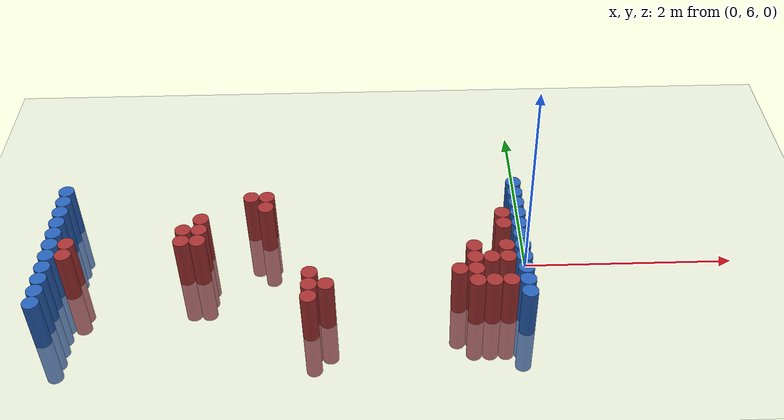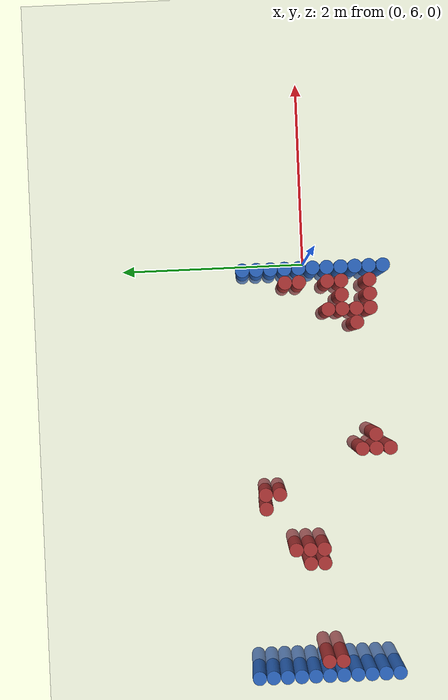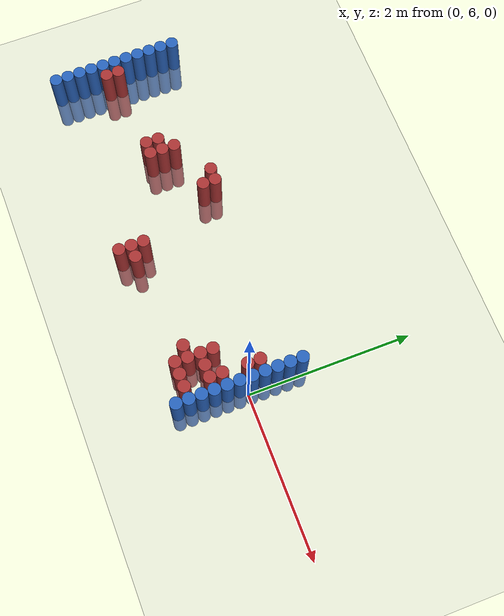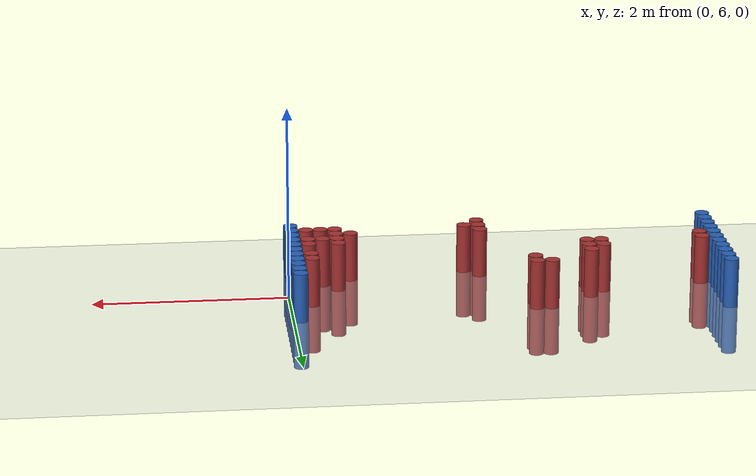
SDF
<sdf version="1.6">
 <world name="default">
  <model name="ground_plane">
   <static>1</static>
   <link name="link">
    <collision name="collision">
     <geometry><plane><normal>0 0 1</normal><size>100 100</size></plane></geometry>
     <surface><friction><ode><mu>100</mu><mu2>50</mu2></ode></friction></surface>
    </collision>
    <visual name="visual">
     <cast_shadows>0</cast_shadows>
     <geometry><plane><normal>0 0 1</normal><size>100 100</size></plane></geometry>
     <material>
      <script><uri>file://media/materials/scripts/gazebo.material</uri><name>Gazebo/Grey</name></script>
     </material>
    </visual>
   </link>
  </model>
  <model name="unit_cylinder_96">
   <static>1</static>
   <pose>-4.425000 5.175000 0.000000 0.000000 0.000000 0.000000</pose>
   <link name="link">
    <inertial>
     <mass>1</mass>
     <inertia><ixx>0.145833</ixx><ixy>0</ixy><ixz>0</ixz><iyy>0.145833</iyy><iyz>0</iyz><izz>0.125</izz></inertia>
    </inertial>
    <collision name="collision">
     <geometry><cylinder><radius>0.075000</radius><length>1</length></cylinder></geometry>
    </collision>
    <visual name="visual">
     <geometry><cylinder><radius>0.075000</radius><length>1</length></cylinder></geometry>
     <material>
      <ambient>0.152000 0.379000 0.720000 1</ambient>
      <diffuse>0.152000 0.379000 0.720000 1</diffuse>
     </material>
     <material>
      <script><name>Gazebo/Grey</name><uri>file://media/materials/scripts/gazebo.material</uri></script>
     </material>
    </visual>
   </link>
  </model>
  <model name="unit_cylinder_97">
   <static>1</static>
   <pose>-4.425000 5.325000 0.000000 0.000000 0.000000 0.000000</pose>
   <link name="link">
    <inertial>
     <mass>1</mass>
     <inertia><ixx>0.145833</ixx><ixy>0</ixy><ixz>0</ixz><iyy>0.145833</iyy><iyz>0</iyz><izz>0.125</izz></inertia>
    </inertial>
    <collision name="collision">
     <geometry><cylinder><radius>0.075000</radius><length>1</length></cylinder></geometry>
    </collision>
    <visual name="visual">
     <geometry><cylinder><radius>0.075000</radius><length>1</length></cylinder></geometry>
     <material>
      <ambient>0.152000 0.379000 0.720000 1</ambient>
      <diffuse>0.152000 0.379000 0.720000 1</diffuse>
     </material>
     <material>
      <script><name>Gazebo/Grey</name><uri>file://media/materials/scripts/gazebo.material</uri></script>
     </material>
    </visual>
   </link>
  </model>
  <model name="unit_cylinder_98">
   <static>1</static>
   <pose>-4.425000 5.475000 0.000000 0.000000 0.000000 0.000000</pose>
   <link name="link">
    <inertial>
     <mass>1</mass>
     <inertia><ixx>0.145833</ixx><ixy>0</ixy><ixz>0</ixz><iyy>0.145833</iyy><iyz>0</iyz><izz>0.125</izz></inertia>
    </inertial>
    <collision name="collision">
     <geometry><cylinder><radius>0.075000</radius><length>1</length></cylinder></geometry>
    </collision>
    <visual name="visual">
     <geometry><cylinder><radius>0.075000</radius><length>1</length></cylinder></geometry>
     <material>
      <ambient>0.152000 0.379000 0.720000 1</ambient>
      <diffuse>0.152000 0.379000 0.720000 1</diffuse>
     </material>
     <material>
      <script><name>Gazebo/Grey</name><uri>file://media/materials/scripts/gazebo.material</uri></script>
     </material>
    </visual>
   </link>
  </model>
  <model name="unit_cylinder_99">
   <static>1</static>
   <pose>-4.425000 5.625000 0.000000 0.000000 0.000000 0.000000</pose>
   <link name="link">
    <inertial>
     <mass>1</mass>
     <inertia><ixx>0.145833</ixx><ixy>0</ixy><ixz>0</ixz><iyy>0.145833</iyy><iyz>0</iyz><izz>0.125</izz></inertia>
    </inertial>
    <collision name="collision">
     <geometry><cylinder><radius>0.075000</radius><length>1</length></cylinder></geometry>
    </collision>
    <visual name="visual">
     <geometry><cylinder><radius>0.075000</radius><length>1</length></cylinder></geometry>
     <material>
      <ambient>0.152000 0.379000 0.720000 1</ambient>
      <diffuse>0.152000 0.379000 0.720000 1</diffuse>
     </material>
     <material>
      <script><name>Gazebo/Grey</name><uri>file://media/materials/scripts/gazebo.material</uri></script>
     </material>
    </visual>
   </link>
  </model>
  <model name="unit_cylinder_100">
   <static>1</static>
   <pose>-4.425000 5.775000 0.000000 0.000000 0.000000 0.000000</pose>
   <link name="link">
    <inertial>
     <mass>1</mass>
     <inertia><ixx>0.145833</ixx><ixy>0</ixy><ixz>0</ixz><iyy>0.145833</iyy><iyz>0</iyz><izz>0.125</izz></inertia>
    </inertial>
    <collision name="collision">
     <geometry><cylinder><radius>0.075000</radius><length>1</length></cylinder></geometry>
    </collision>
    <visual name="visual">
     <geometry><cylinder><radius>0.075000</radius><length>1</length></cylinder></geometry>
     <material>
      <ambient>0.152000 0.379000 0.720000 1</ambient>
      <diffuse>0.152000 0.379000 0.720000 1</diffuse>
     </material>
     <material>
      <script><name>Gazebo/Grey</name><uri>file://media/materials/scripts/gazebo.material</uri></script>
     </material>
    </visual>
   </link>
  </model>
  <model name="unit_cylinder_101">
   <static>1</static>
   <pose>-4.425000 5.925000 0.000000 0.000000 0.000000 0.000000</pose>
   <link name="link">
    <inertial>
     <mass>1</mass>
     <inertia><ixx>0.145833</ixx><ixy>0</ixy><ixz>0</ixz><iyy>0.145833</iyy><iyz>0</iyz><izz>0.125</izz></inertia>
    </inertial>
    <collision name="collision">
     <geometry><cylinder><radius>0.075000</radius><length>1</length></cylinder></geometry>
    </collision>
    <visual name="visual">
     <geometry><cylinder><radius>0.075000</radius><length>1</length></cylinder></geometry>
     <material>
      <ambient>0.152000 0.379000 0.720000 1</ambient>
      <diffuse>0.152000 0.379000 0.720000 1</diffuse>
     </material>
     <material>
      <script><name>Gazebo/Grey</name><uri>file://media/materials/scripts/gazebo.material</uri></script>
     </material>
    </visual>
   </link>
  </model>
  <model name="unit_cylinder_102">
   <static>1</static>
   <pose>-4.425000 6.075000 0.000000 0.000000 0.000000 0.000000</pose>
   <link name="link">
    <inertial>
     <mass>1</mass>
     <inertia><ixx>0.145833</ixx><ixy>0</ixy><ixz>0</ixz><iyy>0.145833</iyy><iyz>0</iyz><izz>0.125</izz></inertia>
    </inertial>
    <collision name="collision">
     <geometry><cylinder><radius>0.075000</radius><length>1</length></cylinder></geometry>
    </collision>
    <visual name="visual">
     <geometry><cylinder><radius>0.075000</radius><length>1</length></cylinder></geometry>
     <material>
      <ambient>0.152000 0.379000 0.720000 1</ambient>
      <diffuse>0.152000 0.379000 0.720000 1</diffuse>
     </material>
     <material>
      <script><name>Gazebo/Grey</name><uri>file://media/materials/scripts/gazebo.material</uri></script>
     </material>
    </visual>
   </link>
  </model>
  <model name="unit_cylinder_103">
   <static>1</static>
   <pose>-4.425000 6.225000 0.000000 0.000000 0.000000 0.000000</pose>
   <link name="link">
    <inertial>
     <mass>1</mass>
     <inertia><ixx>0.145833</ixx><ixy>0</ixy><ixz>0</ixz><iyy>0.145833</iyy><iyz>0</iyz><izz>0.125</izz></inertia>
    </inertial>
    <collision name="collision">
     <geometry><cylinder><radius>0.075000</radius><length>1</length></cylinder></geometry>
    </collision>
    <visual name="visual">
     <geometry><cylinder><radius>0.075000</radius><length>1</length></cylinder></geometry>
     <material>
      <ambient>0.152000 0.379000 0.720000 1</ambient>
      <diffuse>0.152000 0.379000 0.720000 1</diffuse>
     </material>
     <material>
      <script><name>Gazebo/Grey</name><uri>file://media/materials/scripts/gazebo.material</uri></script>
     </material>
    </visual>
   </link>
  </model>
  <model name="unit_cylinder_104">
   <static>1</static>
   <pose>-4.425000 6.375000 0.000000 0.000000 0.000000 0.000000</pose>
   <link name="link">
    <inertial>
     <mass>1</mass>
     <inertia><ixx>0.145833</ixx><ixy>0</ixy><ixz>0</ixz><iyy>0.145833</iyy><iyz>0</iyz><izz>0.125</izz></inertia>
    </inertial>
    <collision name="collision">
     <geometry><cylinder><radius>0.075000</radius><length>1</length></cylinder></geometry>
    </collision>
    <visual name="visual">
     <geometry><cylinder><radius>0.075000</radius><length>1</length></cylinder></geometry>
     <material>
      <ambient>0.152000 0.379000 0.720000 1</ambient>
      <diffuse>0.152000 0.379000 0.720000 1</diffuse>
     </material>
     <material>
      <script><name>Gazebo/Grey</name><uri>file://media/materials/scripts/gazebo.material</uri></script>
     </material>
    </visual>
   </link>
  </model>
  <model name="unit_cylinder_105">
   <static>1</static>
   <pose>-4.425000 6.525000 0.000000 0.000000 0.000000 0.000000</pose>
   <link name="link">
    <inertial>
     <mass>1</mass>
     <inertia><ixx>0.145833</ixx><ixy>0</ixy><ixz>0</ixz><iyy>0.145833</iyy><iyz>0</iyz><izz>0.125</izz></inertia>
    </inertial>
    <collision name="collision">
     <geometry><cylinder><radius>0.075000</radius><length>1</length></cylinder></geometry>
    </collision>
    <visual name="visual">
     <geometry><cylinder><radius>0.075000</radius><length>1</length></cylinder></geometry>
     <material>
      <ambient>0.152000 0.379000 0.720000 1</ambient>
      <diffuse>0.152000 0.379000 0.720000 1</diffuse>
     </material>
     <material>
      <script><name>Gazebo/Grey</name><uri>file://media/materials/scripts/gazebo.material</uri></script>
     </material>
    </visual>
   </link>
  </model>
  <model name="unit_cylinder_106">
   <static>1</static>
   <pose>-4.425000 6.675000 0.000000 0.000000 0.000000 0.000000</pose>
   <link name="link">
    <inertial>
     <mass>1</mass>
     <inertia><ixx>0.145833</ixx><ixy>0</ixy><ixz>0</ixz><iyy>0.145833</iyy><iyz>0</iyz><izz>0.125</izz></inertia>
    </inertial>
    <collision name="collision">
     <geometry><cylinder><radius>0.075000</radius><length>1</length></cylinder></geometry>
    </collision>
    <visual name="visual">
     <geometry><cylinder><radius>0.075000</radius><length>1</length></cylinder></geometry>
     <material>
      <ambient>0.152000 0.379000 0.720000 1</ambient>
      <diffuse>0.152000 0.379000 0.720000 1</diffuse>
     </material>
     <material>
      <script><name>Gazebo/Grey</name><uri>file://media/materials/scripts/gazebo.material</uri></script>
     </material>
    </visual>
   </link>
  </model>
  <model name="unit_cylinder_126">
   <static>1</static>
   <pose>-4.275000 5.775000 0.000000 0.000000 0.000000 0.000000</pose>
   <link name="link">
    <inertial>
     <mass>1</mass>
     <inertia><ixx>0.145833</ixx><ixy>0</ixy><ixz>0</ixz><iyy>0.145833</iyy><iyz>0</iyz><izz>0.125</izz></inertia>
    </inertial>
    <collision name="collision">
     <geometry><cylinder><radius>0.075000</radius><length>1</length></cylinder></geometry>
    </collision>
    <visual name="visual">
     <geometry><cylinder><radius>0.075000</radius><length>1</length></cylinder></geometry>
     <material>
      <ambient>0.648000 0.192000 0.192000 1</ambient>
      <diffuse>0.648000 0.192000 0.192000 1</diffuse>
     </material>
     <material>
      <script><name>Gazebo/Grey</name><uri>file://media/materials/scripts/gazebo.material</uri></script>
     </material>
    </visual>
   </link>
  </model>
  <model name="unit_cylinder_127">
   <static>1</static>
   <pose>-4.275000 5.925000 0.000000 0.000000 0.000000 0.000000</pose>
   <link name="link">
    <inertial>
     <mass>1</mass>
     <inertia><ixx>0.145833</ixx><ixy>0</ixy><ixz>0</ixz><iyy>0.145833</iyy><iyz>0</iyz><izz>0.125</izz></inertia>
    </inertial>
    <collision name="collision">
     <geometry><cylinder><radius>0.075000</radius><length>1</length></cylinder></geometry>
    </collision>
    <visual name="visual">
     <geometry><cylinder><radius>0.075000</radius><length>1</length></cylinder></geometry>
     <material>
      <ambient>0.648000 0.192000 0.192000 1</ambient>
      <diffuse>0.648000 0.192000 0.192000 1</diffuse>
     </material>
     <material>
      <script><name>Gazebo/Grey</name><uri>file://media/materials/scripts/gazebo.material</uri></script>
     </material>
    </visual>
   </link>
  </model>
  <model name="unit_cylinder_147">
   <static>1</static>
   <pose>-3.225000 5.925000 0.000000 0.000000 0.000000 0.000000</pose>
   <link name="link">
    <inertial>
     <mass>1</mass>
     <inertia><ixx>0.145833</ixx><ixy>0</ixy><ixz>0</ixz><iyy>0.145833</iyy><iyz>0</iyz><izz>0.125</izz></inertia>
    </inertial>
    <collision name="collision">
     <geometry><cylinder><radius>0.075000</radius><length>1</length></cylinder></geometry>
    </collision>
    <visual name="visual">
     <geometry><cylinder><radius>0.075000</radius><length>1</length></cylinder></geometry>
     <material>
      <ambient>0.648000 0.192000 0.192000 1</ambient>
      <diffuse>0.648000 0.192000 0.192000 1</diffuse>
     </material>
     <material>
      <script><name>Gazebo/Grey</name><uri>file://media/materials/scripts/gazebo.material</uri></script>
     </material>
    </visual>
   </link>
  </model>
  <model name="unit_cylinder_148">
   <static>1</static>
   <pose>-3.225000 6.075000 0.000000 0.000000 0.000000 0.000000</pose>
   <link name="link">
    <inertial>
     <mass>1</mass>
     <inertia><ixx>0.145833</ixx><ixy>0</ixy><ixz>0</ixz><iyy>0.145833</iyy><iyz>0</iyz><izz>0.125</izz></inertia>
    </inertial>
    <collision name="collision">
     <geometry><cylinder><radius>0.075000</radius><length>1</length></cylinder></geometry>
    </collision>
    <visual name="visual">
     <geometry><cylinder><radius>0.075000</radius><length>1</length></cylinder></geometry>
     <material>
      <ambient>0.648000 0.192000 0.192000 1</ambient>
      <diffuse>0.648000 0.192000 0.192000 1</diffuse>
     </material>
     <material>
      <script><name>Gazebo/Grey</name><uri>file://media/materials/scripts/gazebo.material</uri></script>
     </material>
    </visual>
   </link>
  </model>
  <model name="unit_cylinder_150">
   <static>1</static>
   <pose>-3.075000 5.925000 0.000000 0.000000 0.000000 0.000000</pose>
   <link name="link">
    <inertial>
     <mass>1</mass>
     <inertia><ixx>0.145833</ixx><ixy>0</ixy><ixz>0</ixz><iyy>0.145833</iyy><iyz>0</iyz><izz>0.125</izz></inertia>
    </inertial>
    <collision name="collision">
     <geometry><cylinder><radius>0.075000</radius><length>1</length></cylinder></geometry>
    </collision>
    <visual name="visual">
     <geometry><cylinder><radius>0.075000</radius><length>1</length></cylinder></geometry>
     <material>
      <ambient>0.648000 0.192000 0.192000 1</ambient>
      <diffuse>0.648000 0.192000 0.192000 1</diffuse>
     </material>
     <material>
      <script><name>Gazebo/Grey</name><uri>file://media/materials/scripts/gazebo.material</uri></script>
     </material>
    </visual>
   </link>
  </model>
  <model name="unit_cylinder_151">
   <static>1</static>
   <pose>-3.075000 6.075000 0.000000 0.000000 0.000000 0.000000</pose>
   <link name="link">
    <inertial>
     <mass>1</mass>
     <inertia><ixx>0.145833</ixx><ixy>0</ixy><ixz>0</ixz><iyy>0.145833</iyy><iyz>0</iyz><izz>0.125</izz></inertia>
    </inertial>
    <collision name="collision">
     <geometry><cylinder><radius>0.075000</radius><length>1</length></cylinder></geometry>
    </collision>
    <visual name="visual">
     <geometry><cylinder><radius>0.075000</radius><length>1</length></cylinder></geometry>
     <material>
      <ambient>0.648000 0.192000 0.192000 1</ambient>
      <diffuse>0.648000 0.192000 0.192000 1</diffuse>
     </material>
     <material>
      <script><name>Gazebo/Grey</name><uri>file://media/materials/scripts/gazebo.material</uri></script>
     </material>
    </visual>
   </link>
  </model>
  <model name="unit_cylinder_152">
   <static>1</static>
   <pose>-3.075000 6.225000 0.000000 0.000000 0.000000 0.000000</pose>
   <link name="link">
    <inertial>
     <mass>1</mass>
     <inertia><ixx>0.145833</ixx><ixy>0</ixy><ixz>0</ixz><iyy>0.145833</iyy><iyz>0</iyz><izz>0.125</izz></inertia>
    </inertial>
    <collision name="collision">
     <geometry><cylinder><radius>0.075000</radius><length>1</length></cylinder></geometry>
    </collision>
    <visual name="visual">
     <geometry><cylinder><radius>0.075000</radius><length>1</length></cylinder></geometry>
     <material>
      <ambient>0.648000 0.192000 0.192000 1</ambient>
      <diffuse>0.648000 0.192000 0.192000 1</diffuse>
     </material>
     <material>
      <script><name>Gazebo/Grey</name><uri>file://media/materials/scripts/gazebo.material</uri></script>
     </material>
    </visual>
   </link>
  </model>
  <model name="unit_cylinder_156">
   <static>1</static>
   <pose>-2.625000 6.525000 0.000000 0.000000 0.000000 0.000000</pose>
   <link name="link">
    <inertial>
     <mass>1</mass>
     <inertia><ixx>0.145833</ixx><ixy>0</ixy><ixz>0</ixz><iyy>0.145833</iyy><iyz>0</iyz><izz>0.125</izz></inertia>
    </inertial>
    <collision name="collision">
     <geometry><cylinder><radius>0.075000</radius><length>1</length></cylinder></geometry>
    </collision>
    <visual name="visual">
     <geometry><cylinder><radius>0.075000</radius><length>1</length></cylinder></geometry>
     <material>
      <ambient>0.648000 0.192000 0.192000 1</ambient>
      <diffuse>0.648000 0.192000 0.192000 1</diffuse>
     </material>
     <material>
      <script><name>Gazebo/Grey</name><uri>file://media/materials/scripts/gazebo.material</uri></script>
     </material>
    </visual>
   </link>
  </model>
  <model name="unit_cylinder_159">
   <static>1</static>
   <pose>-2.475000 6.375000 0.000000 0.000000 0.000000 0.000000</pose>
   <link name="link">
    <inertial>
     <mass>1</mass>
     <inertia><ixx>0.145833</ixx><ixy>0</ixy><ixz>0</ixz><iyy>0.145833</iyy><iyz>0</iyz><izz>0.125</izz></inertia>
    </inertial>
    <collision name="collision">
     <geometry><cylinder><radius>0.075000</radius><length>1</length></cylinder></geometry>
    </collision>
    <visual name="visual">
     <geometry><cylinder><radius>0.075000</radius><length>1</length></cylinder></geometry>
     <material>
      <ambient>0.648000 0.192000 0.192000 1</ambient>
      <diffuse>0.648000 0.192000 0.192000 1</diffuse>
     </material>
     <material>
      <script><name>Gazebo/Grey</name><uri>file://media/materials/scripts/gazebo.material</uri></script>
     </material>
    </visual>
   </link>
  </model>
  <model name="unit_cylinder_160">
   <static>1</static>
   <pose>-2.475000 6.525000 0.000000 0.000000 0.000000 0.000000</pose>
   <link name="link">
    <inertial>
     <mass>1</mass>
     <inertia><ixx>0.145833</ixx><ixy>0</ixy><ixz>0</ixz><iyy>0.145833</iyy><iyz>0</iyz><izz>0.125</izz></inertia>
    </inertial>
    <collision name="collision">
     <geometry><cylinder><radius>0.075000</radius><length>1</length></cylinder></geometry>
    </collision>
    <visual name="visual">
     <geometry><cylinder><radius>0.075000</radius><length>1</length></cylinder></geometry>
     <material>
      <ambient>0.648000 0.192000 0.192000 1</ambient>
      <diffuse>0.648000 0.192000 0.192000 1</diffuse>
     </material>
     <material>
      <script><name>Gazebo/Grey</name><uri>file://media/materials/scripts/gazebo.material</uri></script>
     </material>
    </visual>
   </link>
  </model>
  <model name="unit_cylinder_169">
   <static>1</static>
   <pose>-2.025000 5.175000 0.000000 0.000000 0.000000 0.000000</pose>
   <link name="link">
    <inertial>
     <mass>1</mass>
     <inertia><ixx>0.145833</ixx><ixy>0</ixy><ixz>0</ixz><iyy>0.145833</iyy><iyz>0</iyz><izz>0.125</izz></inertia>
    </inertial>
    <collision name="collision">
     <geometry><cylinder><radius>0.075000</radius><length>1</length></cylinder></geometry>
    </collision>
    <visual name="visual">
     <geometry><cylinder><radius>0.075000</radius><length>1</length></cylinder></geometry>
     <material>
      <ambient>0.648000 0.192000 0.192000 1</ambient>
      <diffuse>0.648000 0.192000 0.192000 1</diffuse>
     </material>
     <material>
      <script><name>Gazebo/Grey</name><uri>file://media/materials/scripts/gazebo.material</uri></script>
     </material>
    </visual>
   </link>
  </model>
  <model name="unit_cylinder_170">
   <static>1</static>
   <pose>-2.025000 5.325000 0.000000 0.000000 0.000000 0.000000</pose>
   <link name="link">
    <inertial>
     <mass>1</mass>
     <inertia><ixx>0.145833</ixx><ixy>0</ixy><ixz>0</ixz><iyy>0.145833</iyy><iyz>0</iyz><izz>0.125</izz></inertia>
    </inertial>
    <collision name="collision">
     <geometry><cylinder><radius>0.075000</radius><length>1</length></cylinder></geometry>
    </collision>
    <visual name="visual">
     <geometry><cylinder><radius>0.075000</radius><length>1</length></cylinder></geometry>
     <material>
      <ambient>0.648000 0.192000 0.192000 1</ambient>
      <diffuse>0.648000 0.192000 0.192000 1</diffuse>
     </material>
     <material>
      <script><name>Gazebo/Grey</name><uri>file://media/materials/scripts/gazebo.material</uri></script>
     </material>
    </visual>
   </link>
  </model>
  <model name="unit_cylinder_171">
   <static>1</static>
   <pose>-2.025000 5.475000 0.000000 0.000000 0.000000 0.000000</pose>
   <link name="link">
    <inertial>
     <mass>1</mass>
     <inertia><ixx>0.145833</ixx><ixy>0</ixy><ixz>0</ixz><iyy>0.145833</iyy><iyz>0</iyz><izz>0.125</izz></inertia>
    </inertial>
    <collision name="collision">
     <geometry><cylinder><radius>0.075000</radius><length>1</length></cylinder></geometry>
    </collision>
    <visual name="visual">
     <geometry><cylinder><radius>0.075000</radius><length>1</length></cylinder></geometry>
     <material>
      <ambient>0.648000 0.192000 0.192000 1</ambient>
      <diffuse>0.648000 0.192000 0.192000 1</diffuse>
     </material>
     <material>
      <script><name>Gazebo/Grey</name><uri>file://media/materials/scripts/gazebo.material</uri></script>
     </material>
    </visual>
   </link>
  </model>
  <model name="unit_cylinder_172">
   <static>1</static>
   <pose>-1.875000 5.325000 0.000000 0.000000 0.000000 0.000000</pose>
   <link name="link">
    <inertial>
     <mass>1</mass>
     <inertia><ixx>0.145833</ixx><ixy>0</ixy><ixz>0</ixz><iyy>0.145833</iyy><iyz>0</iyz><izz>0.125</izz></inertia>
    </inertial>
    <collision name="collision">
     <geometry><cylinder><radius>0.075000</radius><length>1</length></cylinder></geometry>
    </collision>
    <visual name="visual">
     <geometry><cylinder><radius>0.075000</radius><length>1</length></cylinder></geometry>
     <material>
      <ambient>0.648000 0.192000 0.192000 1</ambient>
      <diffuse>0.648000 0.192000 0.192000 1</diffuse>
     </material>
     <material>
      <script><name>Gazebo/Grey</name><uri>file://media/materials/scripts/gazebo.material</uri></script>
     </material>
    </visual>
   </link>
  </model>
  <model name="unit_cylinder_187">
   <static>1</static>
   <pose>-0.675000 5.475000 0.000000 0.000000 0.000000 0.000000</pose>
   <link name="link">
    <inertial>
     <mass>1</mass>
     <inertia><ixx>0.145833</ixx><ixy>0</ixy><ixz>0</ixz><iyy>0.145833</iyy><iyz>0</iyz><izz>0.125</izz></inertia>
    </inertial>
    <collision name="collision">
     <geometry><cylinder><radius>0.075000</radius><length>1</length></cylinder></geometry>
    </collision>
    <visual name="visual">
     <geometry><cylinder><radius>0.075000</radius><length>1</length></cylinder></geometry>
     <material>
      <ambient>0.648000 0.192000 0.192000 1</ambient>
      <diffuse>0.648000 0.192000 0.192000 1</diffuse>
     </material>
     <material>
      <script><name>Gazebo/Grey</name><uri>file://media/materials/scripts/gazebo.material</uri></script>
     </material>
    </visual>
   </link>
  </model>
  <model name="unit_cylinder_190">
   <static>1</static>
   <pose>-0.525000 5.325000 0.000000 0.000000 0.000000 0.000000</pose>
   <link name="link">
    <inertial>
     <mass>1</mass>
     <inertia><ixx>0.145833</ixx><ixy>0</ixy><ixz>0</ixz><iyy>0.145833</iyy><iyz>0</iyz><izz>0.125</izz></inertia>
    </inertial>
    <collision name="collision">
     <geometry><cylinder><radius>0.075000</radius><length>1</length></cylinder></geometry>
    </collision>
    <visual name="visual">
     <geometry><cylinder><radius>0.075000</radius><length>1</length></cylinder></geometry>
     <material>
      <ambient>0.648000 0.192000 0.192000 1</ambient>
      <diffuse>0.648000 0.192000 0.192000 1</diffuse>
     </material>
     <material>
      <script><name>Gazebo/Grey</name><uri>file://media/materials/scripts/gazebo.material</uri></script>
     </material>
    </visual>
   </link>
  </model>
  <model name="unit_cylinder_191">
   <static>1</static>
   <pose>-0.525000 5.475000 0.000000 0.000000 0.000000 0.000000</pose>
   <link name="link">
    <inertial>
     <mass>1</mass>
     <inertia><ixx>0.145833</ixx><ixy>0</ixy><ixz>0</ixz><iyy>0.145833</iyy><iyz>0</iyz><izz>0.125</izz></inertia>
    </inertial>
    <collision name="collision">
     <geometry><cylinder><radius>0.075000</radius><length>1</length></cylinder></geometry>
    </collision>
    <visual name="visual">
     <geometry><cylinder><radius>0.075000</radius><length>1</length></cylinder></geometry>
     <material>
      <ambient>0.648000 0.192000 0.192000 1</ambient>
      <diffuse>0.648000 0.192000 0.192000 1</diffuse>
     </material>
     <material>
      <script><name>Gazebo/Grey</name><uri>file://media/materials/scripts/gazebo.material</uri></script>
     </material>
    </visual>
   </link>
  </model>
  <model name="unit_cylinder_192">
   <static>1</static>
   <pose>-0.525000 5.625000 0.000000 0.000000 0.000000 0.000000</pose>
   <link name="link">
    <inertial>
     <mass>1</mass>
     <inertia><ixx>0.145833</ixx><ixy>0</ixy><ixz>0</ixz><iyy>0.145833</iyy><iyz>0</iyz><izz>0.125</izz></inertia>
    </inertial>
    <collision name="collision">
     <geometry><cylinder><radius>0.075000</radius><length>1</length></cylinder></geometry>
    </collision>
    <visual name="visual">
     <geometry><cylinder><radius>0.075000</radius><length>1</length></cylinder></geometry>
     <material>
      <ambient>0.648000 0.192000 0.192000 1</ambient>
      <diffuse>0.648000 0.192000 0.192000 1</diffuse>
     </material>
     <material>
      <script><name>Gazebo/Grey</name><uri>file://media/materials/scripts/gazebo.material</uri></script>
     </material>
    </visual>
   </link>
  </model>
  <model name="unit_cylinder_193">
   <static>1</static>
   <pose>-0.525000 5.775000 0.000000 0.000000 0.000000 0.000000</pose>
   <link name="link">
    <inertial>
     <mass>1</mass>
     <inertia><ixx>0.145833</ixx><ixy>0</ixy><ixz>0</ixz><iyy>0.145833</iyy><iyz>0</iyz><izz>0.125</izz></inertia>
    </inertial>
    <collision name="collision">
     <geometry><cylinder><radius>0.075000</radius><length>1</length></cylinder></geometry>
    </collision>
    <visual name="visual">
     <geometry><cylinder><radius>0.075000</radius><length>1</length></cylinder></geometry>
     <material>
      <ambient>0.648000 0.192000 0.192000 1</ambient>
      <diffuse>0.648000 0.192000 0.192000 1</diffuse>
     </material>
     <material>
      <script><name>Gazebo/Grey</name><uri>file://media/materials/scripts/gazebo.material</uri></script>
     </material>
    </visual>
   </link>
  </model>
  <model name="unit_cylinder_196">
   <static>1</static>
   <pose>-0.375000 5.325000 0.000000 0.000000 0.000000 0.000000</pose>
   <link name="link">
    <inertial>
     <mass>1</mass>
     <inertia><ixx>0.145833</ixx><ixy>0</ixy><ixz>0</ixz><iyy>0.145833</iyy><iyz>0</iyz><izz>0.125</izz></inertia>
    </inertial>
    <collision name="collision">
     <geometry><cylinder><radius>0.075000</radius><length>1</length></cylinder></geometry>
    </collision>
    <visual name="visual">
     <geometry><cylinder><radius>0.075000</radius><length>1</length></cylinder></geometry>
     <material>
      <ambient>0.648000 0.192000 0.192000 1</ambient>
      <diffuse>0.648000 0.192000 0.192000 1</diffuse>
     </material>
     <material>
      <script><name>Gazebo/Grey</name><uri>file://media/materials/scripts/gazebo.material</uri></script>
     </material>
    </visual>
   </link>
  </model>
  <model name="unit_cylinder_197">
   <static>1</static>
   <pose>-0.375000 5.625000 0.000000 0.000000 0.000000 0.000000</pose>
   <link name="link">
    <inertial>
     <mass>1</mass>
     <inertia><ixx>0.145833</ixx><ixy>0</ixy><ixz>0</ixz><iyy>0.145833</iyy><iyz>0</iyz><izz>0.125</izz></inertia>
    </inertial>
    <collision name="collision">
     <geometry><cylinder><radius>0.075000</radius><length>1</length></cylinder></geometry>
    </collision>
    <visual name="visual">
     <geometry><cylinder><radius>0.075000</radius><length>1</length></cylinder></geometry>
     <material>
      <ambient>0.648000 0.192000 0.192000 1</ambient>
      <diffuse>0.648000 0.192000 0.192000 1</diffuse>
     </material>
     <material>
      <script><name>Gazebo/Grey</name><uri>file://media/materials/scripts/gazebo.material</uri></script>
     </material>
    </visual>
   </link>
  </model>
  <model name="unit_cylinder_200">
   <static>1</static>
   <pose>-0.225000 5.325000 0.000000 0.000000 0.000000 0.000000</pose>
   <link name="link">
    <inertial>
     <mass>1</mass>
     <inertia><ixx>0.145833</ixx><ixy>0</ixy><ixz>0</ixz><iyy>0.145833</iyy><iyz>0</iyz><izz>0.125</izz></inertia>
    </inertial>
    <collision name="collision">
     <geometry><cylinder><radius>0.075000</radius><length>1</length></cylinder></geometry>
    </collision>
    <visual name="visual">
     <geometry><cylinder><radius>0.075000</radius><length>1</length></cylinder></geometry>
     <material>
      <ambient>0.648000 0.192000 0.192000 1</ambient>
      <diffuse>0.648000 0.192000 0.192000 1</diffuse>
     </material>
     <material>
      <script><name>Gazebo/Grey</name><uri>file://media/materials/scripts/gazebo.material</uri></script>
     </material>
    </visual>
   </link>
  </model>
  <model name="unit_cylinder_201">
   <static>1</static>
   <pose>-0.225000 5.625000 0.000000 0.000000 0.000000 0.000000</pose>
   <link name="link">
    <inertial>
     <mass>1</mass>
     <inertia><ixx>0.145833</ixx><ixy>0</ixy><ixz>0</ixz><iyy>0.145833</iyy><iyz>0</iyz><izz>0.125</izz></inertia>
    </inertial>
    <collision name="collision">
     <geometry><cylinder><radius>0.075000</radius><length>1</length></cylinder></geometry>
    </collision>
    <visual name="visual">
     <geometry><cylinder><radius>0.075000</radius><length>1</length></cylinder></geometry>
     <material>
      <ambient>0.648000 0.192000 0.192000 1</ambient>
      <diffuse>0.648000 0.192000 0.192000 1</diffuse>
     </material>
     <material>
      <script><name>Gazebo/Grey</name><uri>file://media/materials/scripts/gazebo.material</uri></script>
     </material>
    </visual>
   </link>
  </model>
  <model name="unit_cylinder_202">
   <static>1</static>
   <pose>-0.225000 5.775000 0.000000 0.000000 0.000000 0.000000</pose>
   <link name="link">
    <inertial>
     <mass>1</mass>
     <inertia><ixx>0.145833</ixx><ixy>0</ixy><ixz>0</ixz><iyy>0.145833</iyy><iyz>0</iyz><izz>0.125</izz></inertia>
    </inertial>
    <collision name="collision">
     <geometry><cylinder><radius>0.075000</radius><length>1</length></cylinder></geometry>
    </collision>
    <visual name="visual">
     <geometry><cylinder><radius>0.075000</radius><length>1</length></cylinder></geometry>
     <material>
      <ambient>0.648000 0.192000 0.192000 1</ambient>
      <diffuse>0.648000 0.192000 0.192000 1</diffuse>
     </material>
     <material>
      <script><name>Gazebo/Grey</name><uri>file://media/materials/scripts/gazebo.material</uri></script>
     </material>
    </visual>
   </link>
  </model>
  <model name="unit_cylinder_203">
   <static>1</static>
   <pose>-0.225000 6.075000 0.000000 0.000000 0.000000 0.000000</pose>
   <link name="link">
    <inertial>
     <mass>1</mass>
     <inertia><ixx>0.145833</ixx><ixy>0</ixy><ixz>0</ixz><iyy>0.145833</iyy><iyz>0</iyz><izz>0.125</izz></inertia>
    </inertial>
    <collision name="collision">
     <geometry><cylinder><radius>0.075000</radius><length>1</length></cylinder></geometry>
    </collision>
    <visual name="visual">
     <geometry><cylinder><radius>0.075000</radius><length>1</length></cylinder></geometry>
     <material>
      <ambient>0.648000 0.192000 0.192000 1</ambient>
      <diffuse>0.648000 0.192000 0.192000 1</diffuse>
     </material>
     <material>
      <script><name>Gazebo/Grey</name><uri>file://media/materials/scripts/gazebo.material</uri></script>
     </material>
    </visual>
   </link>
  </model>
  <model name="unit_cylinder_204">
   <static>1</static>
   <pose>-0.225000 6.225000 0.000000 0.000000 0.000000 0.000000</pose>
   <link name="link">
    <inertial>
     <mass>1</mass>
     <inertia><ixx>0.145833</ixx><ixy>0</ixy><ixz>0</ixz><iyy>0.145833</iyy><iyz>0</iyz><izz>0.125</izz></inertia>
    </inertial>
    <collision name="collision">
     <geometry><cylinder><radius>0.075000</radius><length>1</length></cylinder></geometry>
    </collision>
    <visual name="visual">
     <geometry><cylinder><radius>0.075000</radius><length>1</length></cylinder></geometry>
     <material>
      <ambient>0.648000 0.192000 0.192000 1</ambient>
      <diffuse>0.648000 0.192000 0.192000 1</diffuse>
     </material>
     <material>
      <script><name>Gazebo/Grey</name><uri>file://media/materials/scripts/gazebo.material</uri></script>
     </material>
    </visual>
   </link>
  </model>
  <model name="unit_cylinder_210">
   <static>1</static>
   <pose>-0.075000 5.175000 0.000000 0.000000 0.000000 0.000000</pose>
   <link name="link">
    <inertial>
     <mass>1</mass>
     <inertia><ixx>0.145833</ixx><ixy>0</ixy><ixz>0</ixz><iyy>0.145833</iyy><iyz>0</iyz><izz>0.125</izz></inertia>
    </inertial>
    <collision name="collision">
     <geometry><cylinder><radius>0.075000</radius><length>1</length></cylinder></geometry>
    </collision>
    <visual name="visual">
     <geometry><cylinder><radius>0.075000</radius><length>1</length></cylinder></geometry>
     <material>
      <ambient>0.152000 0.379000 0.720000 1</ambient>
      <diffuse>0.152000 0.379000 0.720000 1</diffuse>
     </material>
     <material>
      <script><name>Gazebo/Grey</name><uri>file://media/materials/scripts/gazebo.material</uri></script>
     </material>
    </visual>
   </link>
  </model>
  <model name="unit_cylinder_211">
   <static>1</static>
   <pose>-0.075000 5.325000 0.000000 0.000000 0.000000 0.000000</pose>
   <link name="link">
    <inertial>
     <mass>1</mass>
     <inertia><ixx>0.145833</ixx><ixy>0</ixy><ixz>0</ixz><iyy>0.145833</iyy><iyz>0</iyz><izz>0.125</izz></inertia>
    </inertial>
    <collision name="collision">
     <geometry><cylinder><radius>0.075000</radius><length>1</length></cylinder></geometry>
    </collision>
    <visual name="visual">
     <geometry><cylinder><radius>0.075000</radius><length>1</length></cylinder></geometry>
     <material>
      <ambient>0.152000 0.379000 0.720000 1</ambient>
      <diffuse>0.152000 0.379000 0.720000 1</diffuse>
     </material>
     <material>
      <script><name>Gazebo/Grey</name><uri>file://media/materials/scripts/gazebo.material</uri></script>
     </material>
    </visual>
   </link>
  </model>
  <model name="unit_cylinder_212">
   <static>1</static>
   <pose>-0.075000 5.475000 0.000000 0.000000 0.000000 0.000000</pose>
   <link name="link">
    <inertial>
     <mass>1</mass>
     <inertia><ixx>0.145833</ixx><ixy>0</ixy><ixz>0</ixz><iyy>0.145833</iyy><iyz>0</iyz><izz>0.125</izz></inertia>
    </inertial>
    <collision name="collision">
     <geometry><cylinder><radius>0.075000</radius><length>1</length></cylinder></geometry>
    </collision>
    <visual name="visual">
     <geometry><cylinder><radius>0.075000</radius><length>1</length></cylinder></geometry>
     <material>
      <ambient>0.152000 0.379000 0.720000 1</ambient>
      <diffuse>0.152000 0.379000 0.720000 1</diffuse>
     </material>
     <material>
      <script><name>Gazebo/Grey</name><uri>file://media/materials/scripts/gazebo.material</uri></script>
     </material>
    </visual>
   </link>
  </model>
  <model name="unit_cylinder_213">
   <static>1</static>
   <pose>-0.075000 5.625000 0.000000 0.000000 0.000000 0.000000</pose>
   <link name="link">
    <inertial>
     <mass>1</mass>
     <inertia><ixx>0.145833</ixx><ixy>0</ixy><ixz>0</ixz><iyy>0.145833</iyy><iyz>0</iyz><izz>0.125</izz></inertia>
    </inertial>
    <collision name="collision">
     <geometry><cylinder><radius>0.075000</radius><length>1</length></cylinder></geometry>
    </collision>
    <visual name="visual">
     <geometry><cylinder><radius>0.075000</radius><length>1</length></cylinder></geometry>
     <material>
      <ambient>0.152000 0.379000 0.720000 1</ambient>
      <diffuse>0.152000 0.379000 0.720000 1</diffuse>
     </material>
     <material>
      <script><name>Gazebo/Grey</name><uri>file://media/materials/scripts/gazebo.material</uri></script>
     </material>
    </visual>
   </link>
  </model>
  <model name="unit_cylinder_214">
   <static>1</static>
   <pose>-0.075000 5.775000 0.000000 0.000000 0.000000 0.000000</pose>
   <link name="link">
    <inertial>
     <mass>1</mass>
     <inertia><ixx>0.145833</ixx><ixy>0</ixy><ixz>0</ixz><iyy>0.145833</iyy><iyz>0</iyz><izz>0.125</izz></inertia>
    </inertial>
    <collision name="collision">
     <geometry><cylinder><radius>0.075000</radius><length>1</length></cylinder></geometry>
    </collision>
    <visual name="visual">
     <geometry><cylinder><radius>0.075000</radius><length>1</length></cylinder></geometry>
     <material>
      <ambient>0.152000 0.379000 0.720000 1</ambient>
      <diffuse>0.152000 0.379000 0.720000 1</diffuse>
     </material>
     <material>
      <script><name>Gazebo/Grey</name><uri>file://media/materials/scripts/gazebo.material</uri></script>
     </material>
    </visual>
   </link>
  </model>
  <model name="unit_cylinder_215">
   <static>1</static>
   <pose>-0.075000 5.925000 0.000000 0.000000 0.000000 0.000000</pose>
   <link name="link">
    <inertial>
     <mass>1</mass>
     <inertia><ixx>0.145833</ixx><ixy>0</ixy><ixz>0</ixz><iyy>0.145833</iyy><iyz>0</iyz><izz>0.125</izz></inertia>
    </inertial>
    <collision name="collision">
     <geometry><cylinder><radius>0.075000</radius><length>1</length></cylinder></geometry>
    </collision>
    <visual name="visual">
     <geometry><cylinder><radius>0.075000</radius><length>1</length></cylinder></geometry>
     <material>
      <ambient>0.152000 0.379000 0.720000 1</ambient>
      <diffuse>0.152000 0.379000 0.720000 1</diffuse>
     </material>
     <material>
      <script><name>Gazebo/Grey</name><uri>file://media/materials/scripts/gazebo.material</uri></script>
     </material>
    </visual>
   </link>
  </model>
  <model name="unit_cylinder_216">
   <static>1</static>
   <pose>-0.075000 6.075000 0.000000 0.000000 0.000000 0.000000</pose>
   <link name="link">
    <inertial>
     <mass>1</mass>
     <inertia><ixx>0.145833</ixx><ixy>0</ixy><ixz>0</ixz><iyy>0.145833</iyy><iyz>0</iyz><izz>0.125</izz></inertia>
    </inertial>
    <collision name="collision">
     <geometry><cylinder><radius>0.075000</radius><length>1</length></cylinder></geometry>
    </collision>
    <visual name="visual">
     <geometry><cylinder><radius>0.075000</radius><length>1</length></cylinder></geometry>
     <material>
      <ambient>0.152000 0.379000 0.720000 1</ambient>
      <diffuse>0.152000 0.379000 0.720000 1</diffuse>
     </material>
     <material>
      <script><name>Gazebo/Grey</name><uri>file://media/materials/scripts/gazebo.material</uri></script>
     </material>
    </visual>
   </link>
  </model>
  <model name="unit_cylinder_217">
   <static>1</static>
   <pose>-0.075000 6.225000 0.000000 0.000000 0.000000 0.000000</pose>
   <link name="link">
    <inertial>
     <mass>1</mass>
     <inertia><ixx>0.145833</ixx><ixy>0</ixy><ixz>0</ixz><iyy>0.145833</iyy><iyz>0</iyz><izz>0.125</izz></inertia>
    </inertial>
    <collision name="collision">
     <geometry><cylinder><radius>0.075000</radius><length>1</length></cylinder></geometry>
    </collision>
    <visual name="visual">
     <geometry><cylinder><radius>0.075000</radius><length>1</length></cylinder></geometry>
     <material>
      <ambient>0.152000 0.379000 0.720000 1</ambient>
      <diffuse>0.152000 0.379000 0.720000 1</diffuse>
     </material>
     <material>
      <script><name>Gazebo/Grey</name><uri>file://media/materials/scripts/gazebo.material</uri></script>
     </material>
    </visual>
   </link>
  </model>
  <model name="unit_cylinder_218">
   <static>1</static>
   <pose>-0.075000 6.375000 0.000000 0.000000 0.000000 0.000000</pose>
   <link name="link">
    <inertial>
     <mass>1</mass>
     <inertia><ixx>0.145833</ixx><ixy>0</ixy><ixz>0</ixz><iyy>0.145833</iyy><iyz>0</iyz><izz>0.125</izz></inertia>
    </inertial>
    <collision name="collision">
     <geometry><cylinder><radius>0.075000</radius><length>1</length></cylinder></geometry>
    </collision>
    <visual name="visual">
     <geometry><cylinder><radius>0.075000</radius><length>1</length></cylinder></geometry>
     <material>
      <ambient>0.152000 0.379000 0.720000 1</ambient>
      <diffuse>0.152000 0.379000 0.720000 1</diffuse>
     </material>
     <material>
      <script><name>Gazebo/Grey</name><uri>file://media/materials/scripts/gazebo.material</uri></script>
     </material>
    </visual>
   </link>
  </model>
  <model name="unit_cylinder_219">
   <static>1</static>
   <pose>-0.075000 6.525000 0.000000 0.000000 0.000000 0.000000</pose>
   <link name="link">
    <inertial>
     <mass>1</mass>
     <inertia><ixx>0.145833</ixx><ixy>0</ixy><ixz>0</ixz><iyy>0.145833</iyy><iyz>0</iyz><izz>0.125</izz></inertia>
    </inertial>
    <collision name="collision">
     <geometry><cylinder><radius>0.075000</radius><length>1</length></cylinder></geometry>
    </collision>
    <visual name="visual">
     <geometry><cylinder><radius>0.075000</radius><length>1</length></cylinder></geometry>
     <material>
      <ambient>0.152000 0.379000 0.720000 1</ambient>
      <diffuse>0.152000 0.379000 0.720000 1</diffuse>
     </material>
     <material>
      <script><name>Gazebo/Grey</name><uri>file://media/materials/scripts/gazebo.material</uri></script>
     </material>
    </visual>
   </link>
  </model>
  <model name="unit_cylinder_220">
   <static>1</static>
   <pose>-0.075000 6.675000 0.000000 0.000000 0.000000 0.000000</pose>
   <link name="link">
    <inertial>
     <mass>1</mass>
     <inertia><ixx>0.145833</ixx><ixy>0</ixy><ixz>0</ixz><iyy>0.145833</iyy><iyz>0</iyz><izz>0.125</izz></inertia>
    </inertial>
    <collision name="collision">
     <geometry><cylinder><radius>0.075000</radius><length>1</length></cylinder></geometry>
    </collision>
    <visual name="visual">
     <geometry><cylinder><radius>0.075000</radius><length>1</length></cylinder></geometry>
     <material>
      <ambient>0.152000 0.379000 0.720000 1</ambient>
      <diffuse>0.152000 0.379000 0.720000 1</diffuse>
     </material>
     <material>
      <script><name>Gazebo/Grey</name><uri>file://media/materials/scripts/gazebo.material</uri></script>
     </material>
    </visual>
   </link>
  </model>
 </world>
</sdf>
